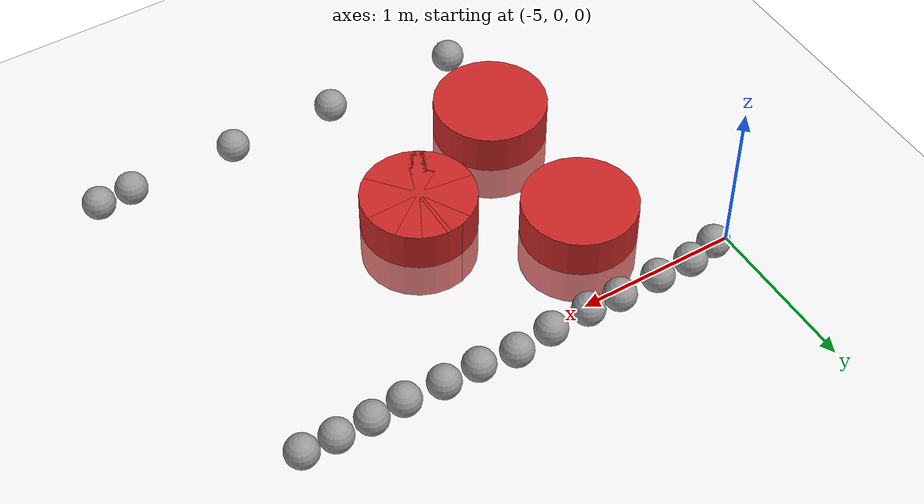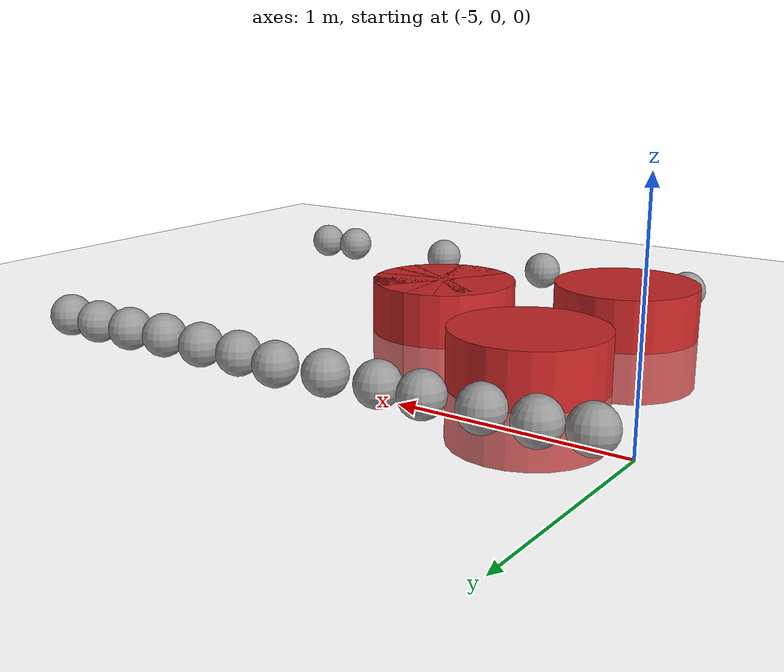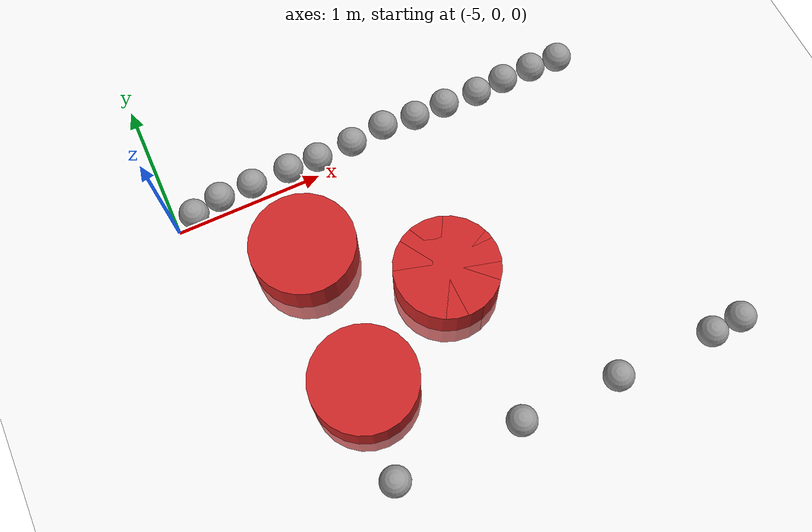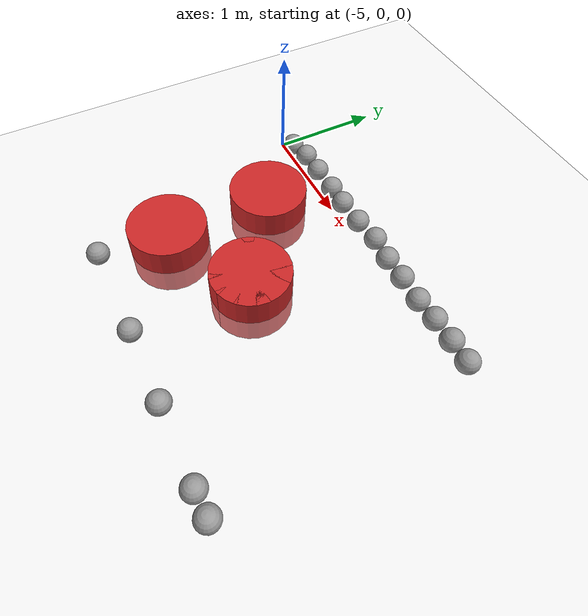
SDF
<sdf version="1.7">
 <world name="default">
  <model name="ground_plane">
   <static>1</static>
   <link name="link">
    <collision name="collision">
     <geometry><plane><normal>0 0 1</normal><size>100 100</size></plane></geometry>
     <surface>
      <contact><collide_bitmask>65535</collide_bitmask></contact>
      <friction><ode><mu>100</mu><mu2>50</mu2></ode></friction>
     </surface>
    </collision>
    <visual name="visual">
     <cast_shadows>0</cast_shadows>
     <geometry><plane><normal>0 0 1</normal><size>100 100</size></plane></geometry>
     <material>
      <script><uri>file://media/materials/scripts/gazebo.material</uri><name>Gazebo/White</name></script>
     </material>
    </visual>
   </link>
  </model>
  <model name="sphere_19">
   <link name="link_0">
    <inertial>
     <mass>1</mass>
     <inertia><ixx>0.1</ixx><ixy>0</ixy><ixz>0</ixz><iyy>0.1</iyy><iyz>0</iyz><izz>0.1</izz></inertia>
    </inertial>
    <visual name="visual">
     <geometry><sphere><radius>0.1</radius></sphere></geometry>
     <material>
      <lighting>1</lighting>
      <script><uri>file://media/materials/scripts/gazebo.material</uri><name>Gazebo/Grey</name></script>
      <shader type="pixel"><normal_map>__default__</normal_map></shader>
      <ambient>0.3 0.3 0.3 1</ambient>
      <diffuse>0.7 0.7 0.7 1</diffuse>
      <specular>0.01 0.01 0.01 1</specular>
      <emissive>0 0 0 1</emissive>
     </material>
    </visual>
    <collision name="collision">
     <geometry><sphere><radius>0.1</radius></sphere></geometry>
     <surface>
      <friction>
       <ode><mu>1</mu><mu2>1</mu2><fdir1>0 0 0</fdir1><slip1>0</slip1><slip2>0</slip2></ode>
       <torsional>
        <coefficient>1</coefficient>
        <patch_radius>0</patch_radius>
        <surface_radius>0</surface_radius>
        <use_patch_radius>1</use_patch_radius>
        <ode><slip>0</slip></ode>
       </torsional>
      </friction>
      <bounce><restitution_coefficient>0</restitution_coefficient><threshold>1e+06</threshold></bounce>
      <contact>
       <collide_without_contact>0</collide_without_contact>
       <collide_without_contact_bitmask>1</collide_without_contact_bitmask>
       <collide_bitmask>1</collide_bitmask>
       <ode>
        <soft_cfm>0</soft_cfm>
        <soft_erp>0.2</soft_erp>
        <kp>1e+13</kp>
        <kd>1</kd>
        <max_vel>0.01</max_vel>
        <min_depth>0</min_depth>
       </ode>
       <bullet>
        <split_impulse>1</split_impulse>
        <split_impulse_penetration_threshold>-0.01</split_impulse_penetration_threshold>
        <soft_cfm>0</soft_cfm>
        <soft_erp>0.2</soft_erp>
        <kp>1e+13</kp>
        <kd>1</kd>
       </bullet>
      </contact>
     </surface>
    </collision>
   </link>
   <static>0</static>
   <pose>-1.96496 -2.08872 0.1 0 -0 0</pose>
  </model>
  <model name="sphere_20">
   <link name="link_0">
    <inertial>
     <mass>1</mass>
     <inertia><ixx>0.1</ixx><ixy>0</ixy><ixz>0</ixz><iyy>0.1</iyy><iyz>0</iyz><izz>0.1</izz></inertia>
    </inertial>
    <visual name="visual">
     <geometry><sphere><radius>0.1</radius></sphere></geometry>
     <material>
      <lighting>1</lighting>
      <script><uri>file://media/materials/scripts/gazebo.material</uri><name>Gazebo/Grey</name></script>
      <shader type="pixel"><normal_map>__default__</normal_map></shader>
      <ambient>0.3 0.3 0.3 1</ambient>
      <diffuse>0.7 0.7 0.7 1</diffuse>
      <specular>0.01 0.01 0.01 1</specular>
      <emissive>0 0 0 1</emissive>
     </material>
    </visual>
    <collision name="collision">
     <geometry><sphere><radius>0.1</radius></sphere></geometry>
     <surface>
      <friction>
       <ode><mu>1</mu><mu2>1</mu2><fdir1>0 0 0</fdir1><slip1>0</slip1><slip2>0</slip2></ode>
       <torsional>
        <coefficient>1</coefficient>
        <patch_radius>0</patch_radius>
        <surface_radius>0</surface_radius>
        <use_patch_radius>1</use_patch_radius>
        <ode><slip>0</slip></ode>
       </torsional>
      </friction>
      <bounce><restitution_coefficient>0</restitution_coefficient><threshold>1e+06</threshold></bounce>
      <contact>
       <collide_without_contact>0</collide_without_contact>
       <collide_without_contact_bitmask>1</collide_without_contact_bitmask>
       <collide_bitmask>1</collide_bitmask>
       <ode>
        <soft_cfm>0</soft_cfm>
        <soft_erp>0.2</soft_erp>
        <kp>1e+13</kp>
        <kd>1</kd>
        <max_vel>0.01</max_vel>
        <min_depth>0</min_depth>
       </ode>
       <bullet>
        <split_impulse>1</split_impulse>
        <split_impulse_penetration_threshold>-0.01</split_impulse_penetration_threshold>
        <soft_cfm>0</soft_cfm>
        <soft_erp>0.2</soft_erp>
        <kp>1e+13</kp>
        <kd>1</kd>
       </bullet>
      </contact>
     </surface>
    </collision>
   </link>
   <static>0</static>
   <pose>-2.17811 -2.09842 0.1 0 -0 0</pose>
  </model>
  <model name="sphere_23">
   <link name="link_0">
    <inertial>
     <mass>1</mass>
     <inertia><ixx>0.1</ixx><ixy>0</ixy><ixz>0</ixz><iyy>0.1</iyy><iyz>0</iyz><izz>0.1</izz></inertia>
    </inertial>
    <visual name="visual">
     <geometry><sphere><radius>0.1</radius></sphere></geometry>
     <material>
      <lighting>1</lighting>
      <script><uri>file://media/materials/scripts/gazebo.material</uri><name>Gazebo/Grey</name></script>
      <shader type="pixel"><normal_map>__default__</normal_map></shader>
      <ambient>0.3 0.3 0.3 1</ambient>
      <diffuse>0.7 0.7 0.7 1</diffuse>
      <specular>0.01 0.01 0.01 1</specular>
      <emissive>0 0 0 1</emissive>
     </material>
    </visual>
    <collision name="collision">
     <geometry><sphere><radius>0.1</radius></sphere></geometry>
     <surface>
      <friction>
       <ode><mu>1</mu><mu2>1</mu2><fdir1>0 0 0</fdir1><slip1>0</slip1><slip2>0</slip2></ode>
       <torsional>
        <coefficient>1</coefficient>
        <patch_radius>0</patch_radius>
        <surface_radius>0</surface_radius>
        <use_patch_radius>1</use_patch_radius>
        <ode><slip>0</slip></ode>
       </torsional>
      </friction>
      <bounce><restitution_coefficient>0</restitution_coefficient><threshold>1e+06</threshold></bounce>
      <contact>
       <collide_without_contact>0</collide_without_contact>
       <collide_without_contact_bitmask>1</collide_without_contact_bitmask>
       <collide_bitmask>1</collide_bitmask>
       <ode>
        <soft_cfm>0</soft_cfm>
        <soft_erp>0.2</soft_erp>
        <kp>1e+13</kp>
        <kd>1</kd>
        <max_vel>0.01</max_vel>
        <min_depth>0</min_depth>
       </ode>
       <bullet>
        <split_impulse>1</split_impulse>
        <split_impulse_penetration_threshold>-0.01</split_impulse_penetration_threshold>
        <soft_cfm>0</soft_cfm>
        <soft_erp>0.2</soft_erp>
        <kp>1e+13</kp>
        <kd>1</kd>
       </bullet>
      </contact>
     </surface>
    </collision>
   </link>
   <static>0</static>
   <pose>-2.85361 -2.09939 0.1 0 -0 0</pose>
  </model>
  <model name="sphere_26">
   <link name="link_0">
    <inertial>
     <mass>1</mass>
     <inertia><ixx>0.1</ixx><ixy>0</ixy><ixz>0</ixz><iyy>0.1</iyy><iyz>0</iyz><izz>0.1</izz></inertia>
    </inertial>
    <visual name="visual">
     <geometry><sphere><radius>0.1</radius></sphere></geometry>
     <material>
      <lighting>1</lighting>
      <script><uri>file://media/materials/scripts/gazebo.material</uri><name>Gazebo/Grey</name></script>
      <shader type="pixel"><normal_map>__default__</normal_map></shader>
      <ambient>0.3 0.3 0.3 1</ambient>
      <diffuse>0.7 0.7 0.7 1</diffuse>
      <specular>0.01 0.01 0.01 1</specular>
      <emissive>0 0 0 1</emissive>
     </material>
    </visual>
    <collision name="collision">
     <geometry><sphere><radius>0.1</radius></sphere></geometry>
     <surface>
      <friction>
       <ode><mu>1</mu><mu2>1</mu2><fdir1>0 0 0</fdir1><slip1>0</slip1><slip2>0</slip2></ode>
       <torsional>
        <coefficient>1</coefficient>
        <patch_radius>0</patch_radius>
        <surface_radius>0</surface_radius>
        <use_patch_radius>1</use_patch_radius>
        <ode><slip>0</slip></ode>
       </torsional>
      </friction>
      <bounce><restitution_coefficient>0</restitution_coefficient><threshold>1e+06</threshold></bounce>
      <contact>
       <collide_without_contact>0</collide_without_contact>
       <collide_without_contact_bitmask>1</collide_without_contact_bitmask>
       <collide_bitmask>1</collide_bitmask>
       <ode>
        <soft_cfm>0</soft_cfm>
        <soft_erp>0.2</soft_erp>
        <kp>1e+13</kp>
        <kd>1</kd>
        <max_vel>0.01</max_vel>
        <min_depth>0</min_depth>
       </ode>
       <bullet>
        <split_impulse>1</split_impulse>
        <split_impulse_penetration_threshold>-0.01</split_impulse_penetration_threshold>
        <soft_cfm>0</soft_cfm>
        <soft_erp>0.2</soft_erp>
        <kp>1e+13</kp>
        <kd>1</kd>
       </bullet>
      </contact>
     </surface>
    </collision>
   </link>
   <static>0</static>
   <pose>-3.52507 -2.09686 0.1 -0.002746 0.025029 -0.000888</pose>
  </model>
  <model name="sphere_30">
   <link name="link_0">
    <inertial>
     <mass>1</mass>
     <inertia><ixx>0.1</ixx><ixy>0</ixy><ixz>0</ixz><iyy>0.1</iyy><iyz>0</iyz><izz>0.1</izz></inertia>
    </inertial>
    <visual name="visual">
     <geometry><sphere><radius>0.1</radius></sphere></geometry>
     <material>
      <lighting>1</lighting>
      <script><uri>file://media/materials/scripts/gazebo.material</uri><name>Gazebo/Grey</name></script>
      <shader type="pixel"><normal_map>__default__</normal_map></shader>
      <ambient>0.3 0.3 0.3 1</ambient>
      <diffuse>0.7 0.7 0.7 1</diffuse>
      <specular>0.01 0.01 0.01 1</specular>
      <emissive>0 0 0 1</emissive>
     </material>
    </visual>
    <collision name="collision">
     <geometry><sphere><radius>0.1</radius></sphere></geometry>
     <surface>
      <friction>
       <ode><mu>1</mu><mu2>1</mu2><fdir1>0 0 0</fdir1><slip1>0</slip1><slip2>0</slip2></ode>
       <torsional>
        <coefficient>1</coefficient>
        <patch_radius>0</patch_radius>
        <surface_radius>0</surface_radius>
        <use_patch_radius>1</use_patch_radius>
        <ode><slip>0</slip></ode>
       </torsional>
      </friction>
      <bounce><restitution_coefficient>0</restitution_coefficient><threshold>1e+06</threshold></bounce>
      <contact>
       <collide_without_contact>0</collide_without_contact>
       <collide_without_contact_bitmask>1</collide_without_contact_bitmask>
       <collide_bitmask>1</collide_bitmask>
       <ode>
        <soft_cfm>0</soft_cfm>
        <soft_erp>0.2</soft_erp>
        <kp>1e+13</kp>
        <kd>1</kd>
        <max_vel>0.01</max_vel>
        <min_depth>0</min_depth>
       </ode>
       <bullet>
        <split_impulse>1</split_impulse>
        <split_impulse_penetration_threshold>-0.01</split_impulse_penetration_threshold>
        <soft_cfm>0</soft_cfm>
        <soft_erp>0.2</soft_erp>
        <kp>1e+13</kp>
        <kd>1</kd>
       </bullet>
      </contact>
     </surface>
    </collision>
   </link>
   <static>0</static>
   <pose>-4.37641 -2.1025 0.1 0 -0 0</pose>
  </model>
  <model name="sphere_90">
   <link name="link_0">
    <inertial>
     <mass>1</mass>
     <inertia><ixx>0.1</ixx><ixy>0</ixy><ixz>0</ixz><iyy>0.1</iyy><iyz>0</iyz><izz>0.1</izz></inertia>
    </inertial>
    <visual name="visual">
     <geometry><sphere><radius>0.1</radius></sphere></geometry>
     <material>
      <lighting>1</lighting>
      <script><uri>file://media/materials/scripts/gazebo.material</uri><name>Gazebo/Grey</name></script>
      <shader type="pixel"><normal_map>__default__</normal_map></shader>
      <ambient>0.3 0.3 0.3 1</ambient>
      <diffuse>0.7 0.7 0.7 1</diffuse>
      <specular>0.01 0.01 0.01 1</specular>
      <emissive>0 0 0 1</emissive>
     </material>
    </visual>
    <collision name="collision">
     <geometry><sphere><radius>0.1</radius></sphere></geometry>
     <surface>
      <friction>
       <ode><mu>1</mu><mu2>1</mu2><fdir1>0 0 0</fdir1><slip1>0</slip1><slip2>0</slip2></ode>
       <torsional>
        <coefficient>1</coefficient>
        <patch_radius>0</patch_radius>
        <surface_radius>0</surface_radius>
        <use_patch_radius>1</use_patch_radius>
        <ode><slip>0</slip></ode>
       </torsional>
      </friction>
      <bounce><restitution_coefficient>0</restitution_coefficient><threshold>1e+06</threshold></bounce>
      <contact>
       <collide_without_contact>0</collide_without_contact>
       <collide_without_contact_bitmask>1</collide_without_contact_bitmask>
       <collide_bitmask>1</collide_bitmask>
       <ode>
        <soft_cfm>0</soft_cfm>
        <soft_erp>0.2</soft_erp>
        <kp>1e+13</kp>
        <kd>1</kd>
        <max_vel>0.01</max_vel>
        <min_depth>0</min_depth>
       </ode>
       <bullet>
        <split_impulse>1</split_impulse>
        <split_impulse_penetration_threshold>-0.01</split_impulse_penetration_threshold>
        <soft_cfm>0</soft_cfm>
        <soft_erp>0.2</soft_erp>
        <kp>1e+13</kp>
        <kd>1</kd>
       </bullet>
      </contact>
     </surface>
    </collision>
   </link>
   <static>0</static>
   <pose>-2.13055 0.103156 0.1 0.001826 0.059351 0.000319</pose>
  </model>
  <model name="sphere_91">
   <link name="link_0">
    <inertial>
     <mass>1</mass>
     <inertia><ixx>0.1</ixx><ixy>0</ixy><ixz>0</ixz><iyy>0.1</iyy><iyz>0</iyz><izz>0.1</izz></inertia>
    </inertial>
    <visual name="visual">
     <geometry><sphere><radius>0.1</radius></sphere></geometry>
     <material>
      <lighting>1</lighting>
      <script><uri>file://media/materials/scripts/gazebo.material</uri><name>Gazebo/Grey</name></script>
      <shader type="pixel"><normal_map>__default__</normal_map></shader>
      <ambient>0.3 0.3 0.3 1</ambient>
      <diffuse>0.7 0.7 0.7 1</diffuse>
      <specular>0.01 0.01 0.01 1</specular>
      <emissive>0 0 0 1</emissive>
     </material>
    </visual>
    <collision name="collision">
     <geometry><sphere><radius>0.1</radius></sphere></geometry>
     <surface>
      <friction>
       <ode><mu>1</mu><mu2>1</mu2><fdir1>0 0 0</fdir1><slip1>0</slip1><slip2>0</slip2></ode>
       <torsional>
        <coefficient>1</coefficient>
        <patch_radius>0</patch_radius>
        <surface_radius>0</surface_radius>
        <use_patch_radius>1</use_patch_radius>
        <ode><slip>0</slip></ode>
       </torsional>
      </friction>
      <bounce><restitution_coefficient>0</restitution_coefficient><threshold>1e+06</threshold></bounce>
      <contact>
       <collide_without_contact>0</collide_without_contact>
       <collide_without_contact_bitmask>1</collide_without_contact_bitmask>
       <collide_bitmask>1</collide_bitmask>
       <ode>
        <soft_cfm>0</soft_cfm>
        <soft_erp>0.2</soft_erp>
        <kp>1e+13</kp>
        <kd>1</kd>
        <max_vel>0.01</max_vel>
        <min_depth>0</min_depth>
       </ode>
       <bullet>
        <split_impulse>1</split_impulse>
        <split_impulse_penetration_threshold>-0.01</split_impulse_penetration_threshold>
        <soft_cfm>0</soft_cfm>
        <soft_erp>0.2</soft_erp>
        <kp>1e+13</kp>
        <kd>1</kd>
       </bullet>
      </contact>
     </surface>
    </collision>
   </link>
   <static>0</static>
   <pose>-2.33554 0.108563 0.1 -0.001915 -0.063892 0.000326</pose>
  </model>
  <model name="sphere_92">
   <link name="link_0">
    <inertial>
     <mass>1</mass>
     <inertia><ixx>0.1</ixx><ixy>0</ixy><ixz>0</ixz><iyy>0.1</iyy><iyz>0</iyz><izz>0.1</izz></inertia>
    </inertial>
    <visual name="visual">
     <geometry><sphere><radius>0.1</radius></sphere></geometry>
     <material>
      <lighting>1</lighting>
      <script><uri>file://media/materials/scripts/gazebo.material</uri><name>Gazebo/Grey</name></script>
      <shader type="pixel"><normal_map>__default__</normal_map></shader>
      <ambient>0.3 0.3 0.3 1</ambient>
      <diffuse>0.7 0.7 0.7 1</diffuse>
      <specular>0.01 0.01 0.01 1</specular>
      <emissive>0 0 0 1</emissive>
     </material>
    </visual>
    <collision name="collision">
     <geometry><sphere><radius>0.1</radius></sphere></geometry>
     <surface>
      <friction>
       <ode><mu>1</mu><mu2>1</mu2><fdir1>0 0 0</fdir1><slip1>0</slip1><slip2>0</slip2></ode>
       <torsional>
        <coefficient>1</coefficient>
        <patch_radius>0</patch_radius>
        <surface_radius>0</surface_radius>
        <use_patch_radius>1</use_patch_radius>
        <ode><slip>0</slip></ode>
       </torsional>
      </friction>
      <bounce><restitution_coefficient>0</restitution_coefficient><threshold>1e+06</threshold></bounce>
      <contact>
       <collide_without_contact>0</collide_without_contact>
       <collide_without_contact_bitmask>1</collide_without_contact_bitmask>
       <collide_bitmask>1</collide_bitmask>
       <ode>
        <soft_cfm>0</soft_cfm>
        <soft_erp>0.2</soft_erp>
        <kp>1e+13</kp>
        <kd>1</kd>
        <max_vel>0.01</max_vel>
        <min_depth>0</min_depth>
       </ode>
       <bullet>
        <split_impulse>1</split_impulse>
        <split_impulse_penetration_threshold>-0.01</split_impulse_penetration_threshold>
        <soft_cfm>0</soft_cfm>
        <soft_erp>0.2</soft_erp>
        <kp>1e+13</kp>
        <kd>1</kd>
       </bullet>
      </contact>
     </surface>
    </collision>
   </link>
   <static>0</static>
   <pose>-2.55218 0.106482 0.1 0 -0 0</pose>
  </model>
  <model name="sphere_93">
   <link name="link_0">
    <inertial>
     <mass>1</mass>
     <inertia><ixx>0.1</ixx><ixy>0</ixy><ixz>0</ixz><iyy>0.1</iyy><iyz>0</iyz><izz>0.1</izz></inertia>
    </inertial>
    <visual name="visual">
     <geometry><sphere><radius>0.1</radius></sphere></geometry>
     <material>
      <lighting>1</lighting>
      <script><uri>file://media/materials/scripts/gazebo.material</uri><name>Gazebo/Grey</name></script>
      <shader type="pixel"><normal_map>__default__</normal_map></shader>
      <ambient>0.3 0.3 0.3 1</ambient>
      <diffuse>0.7 0.7 0.7 1</diffuse>
      <specular>0.01 0.01 0.01 1</specular>
      <emissive>0 0 0 1</emissive>
     </material>
    </visual>
    <collision name="collision">
     <geometry><sphere><radius>0.1</radius></sphere></geometry>
     <surface>
      <friction>
       <ode><mu>1</mu><mu2>1</mu2><fdir1>0 0 0</fdir1><slip1>0</slip1><slip2>0</slip2></ode>
       <torsional>
        <coefficient>1</coefficient>
        <patch_radius>0</patch_radius>
        <surface_radius>0</surface_radius>
        <use_patch_radius>1</use_patch_radius>
        <ode><slip>0</slip></ode>
       </torsional>
      </friction>
      <bounce><restitution_coefficient>0</restitution_coefficient><threshold>1e+06</threshold></bounce>
      <contact>
       <collide_without_contact>0</collide_without_contact>
       <collide_without_contact_bitmask>1</collide_without_contact_bitmask>
       <collide_bitmask>1</collide_bitmask>
       <ode>
        <soft_cfm>0</soft_cfm>
        <soft_erp>0.2</soft_erp>
        <kp>1e+13</kp>
        <kd>1</kd>
        <max_vel>0.01</max_vel>
        <min_depth>0</min_depth>
       </ode>
       <bullet>
        <split_impulse>1</split_impulse>
        <split_impulse_penetration_threshold>-0.01</split_impulse_penetration_threshold>
        <soft_cfm>0</soft_cfm>
        <soft_erp>0.2</soft_erp>
        <kp>1e+13</kp>
        <kd>1</kd>
       </bullet>
      </contact>
     </surface>
    </collision>
   </link>
   <static>0</static>
   <pose>-2.76279 0.091574 0.1 0 -0 0</pose>
  </model>
  <model name="sphere_94">
   <link name="link_0">
    <inertial>
     <mass>1</mass>
     <inertia><ixx>0.1</ixx><ixy>0</ixy><ixz>0</ixz><iyy>0.1</iyy><iyz>0</iyz><izz>0.1</izz></inertia>
    </inertial>
    <visual name="visual">
     <geometry><sphere><radius>0.1</radius></sphere></geometry>
     <material>
      <lighting>1</lighting>
      <script><uri>file://media/materials/scripts/gazebo.material</uri><name>Gazebo/Grey</name></script>
      <shader type="pixel"><normal_map>__default__</normal_map></shader>
      <ambient>0.3 0.3 0.3 1</ambient>
      <diffuse>0.7 0.7 0.7 1</diffuse>
      <specular>0.01 0.01 0.01 1</specular>
      <emissive>0 0 0 1</emissive>
     </material>
    </visual>
    <collision name="collision">
     <geometry><sphere><radius>0.1</radius></sphere></geometry>
     <surface>
      <friction>
       <ode><mu>1</mu><mu2>1</mu2><fdir1>0 0 0</fdir1><slip1>0</slip1><slip2>0</slip2></ode>
       <torsional>
        <coefficient>1</coefficient>
        <patch_radius>0</patch_radius>
        <surface_radius>0</surface_radius>
        <use_patch_radius>1</use_patch_radius>
        <ode><slip>0</slip></ode>
       </torsional>
      </friction>
      <bounce><restitution_coefficient>0</restitution_coefficient><threshold>1e+06</threshold></bounce>
      <contact>
       <collide_without_contact>0</collide_without_contact>
       <collide_without_contact_bitmask>1</collide_without_contact_bitmask>
       <collide_bitmask>1</collide_bitmask>
       <ode>
        <soft_cfm>0</soft_cfm>
        <soft_erp>0.2</soft_erp>
        <kp>1e+13</kp>
        <kd>1</kd>
        <max_vel>0.01</max_vel>
        <min_depth>0</min_depth>
       </ode>
       <bullet>
        <split_impulse>1</split_impulse>
        <split_impulse_penetration_threshold>-0.01</split_impulse_penetration_threshold>
        <soft_cfm>0</soft_cfm>
        <soft_erp>0.2</soft_erp>
        <kp>1e+13</kp>
        <kd>1</kd>
       </bullet>
      </contact>
     </surface>
    </collision>
   </link>
   <static>0</static>
   <pose>-3.00652 0.102714 0.1 0 -0 0</pose>
  </model>
  <model name="sphere_95">
   <link name="link_0">
    <inertial>
     <mass>1</mass>
     <inertia><ixx>0.1</ixx><ixy>0</ixy><ixz>0</ixz><iyy>0.1</iyy><iyz>0</iyz><izz>0.1</izz></inertia>
    </inertial>
    <visual name="visual">
     <geometry><sphere><radius>0.1</radius></sphere></geometry>
     <material>
      <lighting>1</lighting>
      <script><uri>file://media/materials/scripts/gazebo.material</uri><name>Gazebo/Grey</name></script>
      <shader type="pixel"><normal_map>__default__</normal_map></shader>
      <ambient>0.3 0.3 0.3 1</ambient>
      <diffuse>0.7 0.7 0.7 1</diffuse>
      <specular>0.01 0.01 0.01 1</specular>
      <emissive>0 0 0 1</emissive>
     </material>
    </visual>
    <collision name="collision">
     <geometry><sphere><radius>0.1</radius></sphere></geometry>
     <surface>
      <friction>
       <ode><mu>1</mu><mu2>1</mu2><fdir1>0 0 0</fdir1><slip1>0</slip1><slip2>0</slip2></ode>
       <torsional>
        <coefficient>1</coefficient>
        <patch_radius>0</patch_radius>
        <surface_radius>0</surface_radius>
        <use_patch_radius>1</use_patch_radius>
        <ode><slip>0</slip></ode>
       </torsional>
      </friction>
      <bounce><restitution_coefficient>0</restitution_coefficient><threshold>1e+06</threshold></bounce>
      <contact>
       <collide_without_contact>0</collide_without_contact>
       <collide_without_contact_bitmask>1</collide_without_contact_bitmask>
       <collide_bitmask>1</collide_bitmask>
       <ode>
        <soft_cfm>0</soft_cfm>
        <soft_erp>0.2</soft_erp>
        <kp>1e+13</kp>
        <kd>1</kd>
        <max_vel>0.01</max_vel>
        <min_depth>0</min_depth>
       </ode>
       <bullet>
        <split_impulse>1</split_impulse>
        <split_impulse_penetration_threshold>-0.01</split_impulse_penetration_threshold>
        <soft_cfm>0</soft_cfm>
        <soft_erp>0.2</soft_erp>
        <kp>1e+13</kp>
        <kd>1</kd>
       </bullet>
      </contact>
     </surface>
    </collision>
   </link>
   <static>0</static>
   <pose>-3.23039 0.100863 0.1 0 -0 0</pose>
  </model>
  <model name="sphere_96">
   <link name="link_0">
    <inertial>
     <mass>1</mass>
     <inertia><ixx>0.1</ixx><ixy>0</ixy><ixz>0</ixz><iyy>0.1</iyy><iyz>0</iyz><izz>0.1</izz></inertia>
    </inertial>
    <visual name="visual">
     <geometry><sphere><radius>0.1</radius></sphere></geometry>
     <material>
      <lighting>1</lighting>
      <script><uri>file://media/materials/scripts/gazebo.material</uri><name>Gazebo/Grey</name></script>
      <shader type="pixel"><normal_map>__default__</normal_map></shader>
      <ambient>0.3 0.3 0.3 1</ambient>
      <diffuse>0.7 0.7 0.7 1</diffuse>
      <specular>0.01 0.01 0.01 1</specular>
      <emissive>0 0 0 1</emissive>
     </material>
    </visual>
    <collision name="collision">
     <geometry><sphere><radius>0.1</radius></sphere></geometry>
     <surface>
      <friction>
       <ode><mu>1</mu><mu2>1</mu2><fdir1>0 0 0</fdir1><slip1>0</slip1><slip2>0</slip2></ode>
       <torsional>
        <coefficient>1</coefficient>
        <patch_radius>0</patch_radius>
        <surface_radius>0</surface_radius>
        <use_patch_radius>1</use_patch_radius>
        <ode><slip>0</slip></ode>
       </torsional>
      </friction>
      <bounce><restitution_coefficient>0</restitution_coefficient><threshold>1e+06</threshold></bounce>
      <contact>
       <collide_without_contact>0</collide_without_contact>
       <collide_without_contact_bitmask>1</collide_without_contact_bitmask>
       <collide_bitmask>1</collide_bitmask>
       <ode>
        <soft_cfm>0</soft_cfm>
        <soft_erp>0.2</soft_erp>
        <kp>1e+13</kp>
        <kd>1</kd>
        <max_vel>0.01</max_vel>
        <min_depth>0</min_depth>
       </ode>
       <bullet>
        <split_impulse>1</split_impulse>
        <split_impulse_penetration_threshold>-0.01</split_impulse_penetration_threshold>
        <soft_cfm>0</soft_cfm>
        <soft_erp>0.2</soft_erp>
        <kp>1e+13</kp>
        <kd>1</kd>
       </bullet>
      </contact>
     </surface>
    </collision>
   </link>
   <static>0</static>
   <pose>-3.46106 0.125286 0.1 0 -0 0</pose>
  </model>
  <model name="sphere_97">
   <link name="link_0">
    <inertial>
     <mass>1</mass>
     <inertia><ixx>0.1</ixx><ixy>0</ixy><ixz>0</ixz><iyy>0.1</iyy><iyz>0</iyz><izz>0.1</izz></inertia>
    </inertial>
    <visual name="visual">
     <geometry><sphere><radius>0.1</radius></sphere></geometry>
     <material>
      <lighting>1</lighting>
      <script><uri>file://media/materials/scripts/gazebo.material</uri><name>Gazebo/Grey</name></script>
      <shader type="pixel"><normal_map>__default__</normal_map></shader>
      <ambient>0.3 0.3 0.3 1</ambient>
      <diffuse>0.7 0.7 0.7 1</diffuse>
      <specular>0.01 0.01 0.01 1</specular>
      <emissive>0 0 0 1</emissive>
     </material>
    </visual>
    <collision name="collision">
     <geometry><sphere><radius>0.1</radius></sphere></geometry>
     <surface>
      <friction>
       <ode><mu>1</mu><mu2>1</mu2><fdir1>0 0 0</fdir1><slip1>0</slip1><slip2>0</slip2></ode>
       <torsional>
        <coefficient>1</coefficient>
        <patch_radius>0</patch_radius>
        <surface_radius>0</surface_radius>
        <use_patch_radius>1</use_patch_radius>
        <ode><slip>0</slip></ode>
       </torsional>
      </friction>
      <bounce><restitution_coefficient>0</restitution_coefficient><threshold>1e+06</threshold></bounce>
      <contact>
       <collide_without_contact>0</collide_without_contact>
       <collide_without_contact_bitmask>1</collide_without_contact_bitmask>
       <collide_bitmask>1</collide_bitmask>
       <ode>
        <soft_cfm>0</soft_cfm>
        <soft_erp>0.2</soft_erp>
        <kp>1e+13</kp>
        <kd>1</kd>
        <max_vel>0.01</max_vel>
        <min_depth>0</min_depth>
       </ode>
       <bullet>
        <split_impulse>1</split_impulse>
        <split_impulse_penetration_threshold>-0.01</split_impulse_penetration_threshold>
        <soft_cfm>0</soft_cfm>
        <soft_erp>0.2</soft_erp>
        <kp>1e+13</kp>
        <kd>1</kd>
       </bullet>
      </contact>
     </surface>
    </collision>
   </link>
   <static>0</static>
   <pose>-3.70449 0.096931 0.1 0 -0 0</pose>
  </model>
  <model name="sphere_98">
   <link name="link_0">
    <inertial>
     <mass>1</mass>
     <inertia><ixx>0.1</ixx><ixy>0</ixy><ixz>0</ixz><iyy>0.1</iyy><iyz>0</iyz><izz>0.1</izz></inertia>
    </inertial>
    <visual name="visual">
     <geometry><sphere><radius>0.1</radius></sphere></geometry>
     <material>
      <lighting>1</lighting>
      <script><uri>file://media/materials/scripts/gazebo.material</uri><name>Gazebo/Grey</name></script>
      <shader type="pixel"><normal_map>__default__</normal_map></shader>
      <ambient>0.3 0.3 0.3 1</ambient>
      <diffuse>0.7 0.7 0.7 1</diffuse>
      <specular>0.01 0.01 0.01 1</specular>
      <emissive>0 0 0 1</emissive>
     </material>
    </visual>
    <collision name="collision">
     <geometry><sphere><radius>0.1</radius></sphere></geometry>
     <surface>
      <friction>
       <ode><mu>1</mu><mu2>1</mu2><fdir1>0 0 0</fdir1><slip1>0</slip1><slip2>0</slip2></ode>
       <torsional>
        <coefficient>1</coefficient>
        <patch_radius>0</patch_radius>
        <surface_radius>0</surface_radius>
        <use_patch_radius>1</use_patch_radius>
        <ode><slip>0</slip></ode>
       </torsional>
      </friction>
      <bounce><restitution_coefficient>0</restitution_coefficient><threshold>1e+06</threshold></bounce>
      <contact>
       <collide_without_contact>0</collide_without_contact>
       <collide_without_contact_bitmask>1</collide_without_contact_bitmask>
       <collide_bitmask>1</collide_bitmask>
       <ode>
        <soft_cfm>0</soft_cfm>
        <soft_erp>0.2</soft_erp>
        <kp>1e+13</kp>
        <kd>1</kd>
        <max_vel>0.01</max_vel>
        <min_depth>0</min_depth>
       </ode>
       <bullet>
        <split_impulse>1</split_impulse>
        <split_impulse_penetration_threshold>-0.01</split_impulse_penetration_threshold>
        <soft_cfm>0</soft_cfm>
        <soft_erp>0.2</soft_erp>
        <kp>1e+13</kp>
        <kd>1</kd>
       </bullet>
      </contact>
     </surface>
    </collision>
   </link>
   <static>0</static>
   <pose>-3.96126 0.088226 0.1 0 -0 0</pose>
  </model>
  <model name="sphere_99">
   <link name="link_0">
    <inertial>
     <mass>1</mass>
     <inertia><ixx>0.1</ixx><ixy>0</ixy><ixz>0</ixz><iyy>0.1</iyy><iyz>0</iyz><izz>0.1</izz></inertia>
    </inertial>
    <visual name="visual">
     <geometry><sphere><radius>0.1</radius></sphere></geometry>
     <material>
      <lighting>1</lighting>
      <script><uri>file://media/materials/scripts/gazebo.material</uri><name>Gazebo/Grey</name></script>
      <shader type="pixel"><normal_map>__default__</normal_map></shader>
      <ambient>0.3 0.3 0.3 1</ambient>
      <diffuse>0.7 0.7 0.7 1</diffuse>
      <specular>0.01 0.01 0.01 1</specular>
      <emissive>0 0 0 1</emissive>
     </material>
    </visual>
    <collision name="collision">
     <geometry><sphere><radius>0.1</radius></sphere></geometry>
     <surface>
      <friction>
       <ode><mu>1</mu><mu2>1</mu2><fdir1>0 0 0</fdir1><slip1>0</slip1><slip2>0</slip2></ode>
       <torsional>
        <coefficient>1</coefficient>
        <patch_radius>0</patch_radius>
        <surface_radius>0</surface_radius>
        <use_patch_radius>1</use_patch_radius>
        <ode><slip>0</slip></ode>
       </torsional>
      </friction>
      <bounce><restitution_coefficient>0</restitution_coefficient><threshold>1e+06</threshold></bounce>
      <contact>
       <collide_without_contact>0</collide_without_contact>
       <collide_without_contact_bitmask>1</collide_without_contact_bitmask>
       <collide_bitmask>1</collide_bitmask>
       <ode>
        <soft_cfm>0</soft_cfm>
        <soft_erp>0.2</soft_erp>
        <kp>1e+13</kp>
        <kd>1</kd>
        <max_vel>0.01</max_vel>
        <min_depth>0</min_depth>
       </ode>
       <bullet>
        <split_impulse>1</split_impulse>
        <split_impulse_penetration_threshold>-0.01</split_impulse_penetration_threshold>
        <soft_cfm>0</soft_cfm>
        <soft_erp>0.2</soft_erp>
        <kp>1e+13</kp>
        <kd>1</kd>
       </bullet>
      </contact>
     </surface>
    </collision>
   </link>
   <static>0</static>
   <pose>-4.17198 0.093062 0.1 0 -0 0</pose>
  </model>
  <model name="sphere_100">
   <link name="link_0">
    <inertial>
     <mass>1</mass>
     <inertia><ixx>0.1</ixx><ixy>0</ixy><ixz>0</ixz><iyy>0.1</iyy><iyz>0</iyz><izz>0.1</izz></inertia>
    </inertial>
    <visual name="visual">
     <geometry><sphere><radius>0.1</radius></sphere></geometry>
     <material>
      <lighting>1</lighting>
      <script><uri>file://media/materials/scripts/gazebo.material</uri><name>Gazebo/Grey</name></script>
      <shader type="pixel"><normal_map>__default__</normal_map></shader>
      <ambient>0.3 0.3 0.3 1</ambient>
      <diffuse>0.7 0.7 0.7 1</diffuse>
      <specular>0.01 0.01 0.01 1</specular>
      <emissive>0 0 0 1</emissive>
     </material>
    </visual>
    <collision name="collision">
     <geometry><sphere><radius>0.1</radius></sphere></geometry>
     <surface>
      <friction>
       <ode><mu>1</mu><mu2>1</mu2><fdir1>0 0 0</fdir1><slip1>0</slip1><slip2>0</slip2></ode>
       <torsional>
        <coefficient>1</coefficient>
        <patch_radius>0</patch_radius>
        <surface_radius>0</surface_radius>
        <use_patch_radius>1</use_patch_radius>
        <ode><slip>0</slip></ode>
       </torsional>
      </friction>
      <bounce><restitution_coefficient>0</restitution_coefficient><threshold>1e+06</threshold></bounce>
      <contact>
       <collide_without_contact>0</collide_without_contact>
       <collide_without_contact_bitmask>1</collide_without_contact_bitmask>
       <collide_bitmask>1</collide_bitmask>
       <ode>
        <soft_cfm>0</soft_cfm>
        <soft_erp>0.2</soft_erp>
        <kp>1e+13</kp>
        <kd>1</kd>
        <max_vel>0.01</max_vel>
        <min_depth>0</min_depth>
       </ode>
       <bullet>
        <split_impulse>1</split_impulse>
        <split_impulse_penetration_threshold>-0.01</split_impulse_penetration_threshold>
        <soft_cfm>0</soft_cfm>
        <soft_erp>0.2</soft_erp>
        <kp>1e+13</kp>
        <kd>1</kd>
       </bullet>
      </contact>
     </surface>
    </collision>
   </link>
   <static>0</static>
   <pose>-4.43538 0.090878 0.1 0 -0 0</pose>
  </model>
  <model name="sphere_101">
   <link name="link_0">
    <inertial>
     <mass>1</mass>
     <inertia><ixx>0.1</ixx><ixy>0</ixy><ixz>0</ixz><iyy>0.1</iyy><iyz>0</iyz><izz>0.1</izz></inertia>
    </inertial>
    <visual name="visual">
     <geometry><sphere><radius>0.1</radius></sphere></geometry>
     <material>
      <lighting>1</lighting>
      <script><uri>file://media/materials/scripts/gazebo.material</uri><name>Gazebo/Grey</name></script>
      <shader type="pixel"><normal_map>__default__</normal_map></shader>
      <ambient>0.3 0.3 0.3 1</ambient>
      <diffuse>0.7 0.7 0.7 1</diffuse>
      <specular>0.01 0.01 0.01 1</specular>
      <emissive>0 0 0 1</emissive>
     </material>
    </visual>
    <collision name="collision">
     <geometry><sphere><radius>0.1</radius></sphere></geometry>
     <surface>
      <friction>
       <ode><mu>1</mu><mu2>1</mu2><fdir1>0 0 0</fdir1><slip1>0</slip1><slip2>0</slip2></ode>
       <torsional>
        <coefficient>1</coefficient>
        <patch_radius>0</patch_radius>
        <surface_radius>0</surface_radius>
        <use_patch_radius>1</use_patch_radius>
        <ode><slip>0</slip></ode>
       </torsional>
      </friction>
      <bounce><restitution_coefficient>0</restitution_coefficient><threshold>1e+06</threshold></bounce>
      <contact>
       <collide_without_contact>0</collide_without_contact>
       <collide_without_contact_bitmask>1</collide_without_contact_bitmask>
       <collide_bitmask>1</collide_bitmask>
       <ode>
        <soft_cfm>0</soft_cfm>
        <soft_erp>0.2</soft_erp>
        <kp>1e+13</kp>
        <kd>1</kd>
        <max_vel>0.01</max_vel>
        <min_depth>0</min_depth>
       </ode>
       <bullet>
        <split_impulse>1</split_impulse>
        <split_impulse_penetration_threshold>-0.01</split_impulse_penetration_threshold>
        <soft_cfm>0</soft_cfm>
        <soft_erp>0.2</soft_erp>
        <kp>1e+13</kp>
        <kd>1</kd>
       </bullet>
      </contact>
     </surface>
    </collision>
   </link>
   <static>0</static>
   <pose>-4.66588 0.090198 0.1 -0.00173 0.017044 0.001894</pose>
  </model>
  <model name="sphere_112">
   <link name="link_0">
    <inertial>
     <mass>1</mass>
     <inertia><ixx>0.1</ixx><ixy>0</ixy><ixz>0</ixz><iyy>0.1</iyy><iyz>0</iyz><izz>0.1</izz></inertia>
    </inertial>
    <visual name="visual">
     <geometry><sphere><radius>0.1</radius></sphere></geometry>
     <material>
      <lighting>1</lighting>
      <script><uri>file://media/materials/scripts/gazebo.material</uri><name>Gazebo/Grey</name></script>
      <shader type="pixel"><normal_map>__default__</normal_map></shader>
      <ambient>0.3 0.3 0.3 1</ambient>
      <diffuse>0.7 0.7 0.7 1</diffuse>
      <specular>0.01 0.01 0.01 1</specular>
      <emissive>0 0 0 1</emissive>
     </material>
    </visual>
    <collision name="collision">
     <geometry><sphere><radius>0.1</radius></sphere></geometry>
     <surface>
      <friction>
       <ode><mu>1</mu><mu2>1</mu2><fdir1>0 0 0</fdir1><slip1>0</slip1><slip2>0</slip2></ode>
       <torsional>
        <coefficient>1</coefficient>
        <patch_radius>0</patch_radius>
        <surface_radius>0</surface_radius>
        <use_patch_radius>1</use_patch_radius>
        <ode><slip>0</slip></ode>
       </torsional>
      </friction>
      <bounce><restitution_coefficient>0</restitution_coefficient><threshold>1e+06</threshold></bounce>
      <contact>
       <collide_without_contact>0</collide_without_contact>
       <collide_without_contact_bitmask>1</collide_without_contact_bitmask>
       <collide_bitmask>1</collide_bitmask>
       <ode>
        <soft_cfm>0</soft_cfm>
        <soft_erp>0.2</soft_erp>
        <kp>1e+13</kp>
        <kd>1</kd>
        <max_vel>0.01</max_vel>
        <min_depth>0</min_depth>
       </ode>
       <bullet>
        <split_impulse>1</split_impulse>
        <split_impulse_penetration_threshold>-0.01</split_impulse_penetration_threshold>
        <soft_cfm>0</soft_cfm>
        <soft_erp>0.2</soft_erp>
        <kp>1e+13</kp>
        <kd>1</kd>
       </bullet>
      </contact>
     </surface>
    </collision>
   </link>
   <static>0</static>
   <pose>-4.8624 0.045907 0.1 0.116236 0.043586 -0.004795</pose>
  </model>
  <model name="model8.2_0">
   <model name="model8.1_3">
    <link name="link_1">
     <inertial>
      <mass>1</mass>
      <inertia><ixx>0.145833</ixx><ixy>0</ixy><ixz>0</ixz><iyy>0.145833</iyy><iyz>0</iyz><izz>0.125</izz></inertia>
     </inertial>
     <visual name="visual">
      <geometry><cylinder><radius>0.35</radius><length>0.5</length></cylinder></geometry>
      <material>
       <lighting>1</lighting>
       <script><uri>file://media/materials/scripts/gazebo.material</uri><name>Gazebo/Red</name></script>
       <shader type="pixel"><normal_map>__default__</normal_map></shader>
       <ambient>0 1 0 1</ambient>
       <diffuse>0.7 0.7 0.7 1</diffuse>
       <specular>0.01 0.01 0.01 1</specular>
       <emissive>0 0 0 1</emissive>
      </material>
     </visual>
     <collision name="collision">
      <geometry><cylinder><radius>0.35</radius><length>0.5</length></cylinder></geometry>
      <surface>
       <friction>
        <ode><mu>1</mu><mu2>1</mu2><fdir1>0 0 0</fdir1><slip1>0</slip1><slip2>0</slip2></ode>
        <torsional>
         <coefficient>1</coefficient>
         <patch_radius>0</patch_radius>
         <surface_radius>0</surface_radius>
         <use_patch_radius>1</use_patch_radius>
         <ode><slip>0</slip></ode>
        </torsional>
       </friction>
       <bounce><restitution_coefficient>0</restitution_coefficient><threshold>1e+06</threshold></bounce>
       <contact>
        <collide_without_contact>0</collide_without_contact>
        <collide_without_contact_bitmask>1</collide_without_contact_bitmask>
        <collide_bitmask>1</collide_bitmask>
        <ode>
         <soft_cfm>0</soft_cfm>
         <soft_erp>0.2</soft_erp>
         <kp>1e+13</kp>
         <kd>1</kd>
         <max_vel>0.01</max_vel>
         <min_depth>0</min_depth>
        </ode>
        <bullet>
         <split_impulse>1</split_impulse>
         <split_impulse_penetration_threshold>-0.01</split_impulse_penetration_threshold>
         <soft_cfm>0</soft_cfm>
         <soft_erp>0.2</soft_erp>
         <kp>1e+13</kp>
         <kd>1</kd>
        </bullet>
       </contact>
      </surface>
     </collision>
    </link>
    <static>0</static>
    <pose>-4e-06 4e-06 0 0 -0 0</pose>
   </model>
   <static>0</static>
   <pose>-4.30421 -1.48613 0 0 -0 0</pose>
  </model>
  <model name="model8.2_1">
   <model name="model8.1_3">
    <link name="link_1">
     <inertial>
      <mass>1</mass>
      <inertia><ixx>0.145833</ixx><ixy>0</ixy><ixz>0</ixz><iyy>0.145833</iyy><iyz>0</iyz><izz>0.125</izz></inertia>
     </inertial>
     <visual name="visual">
      <geometry><cylinder><radius>0.35</radius><length>0.5</length></cylinder></geometry>
      <material>
       <lighting>1</lighting>
       <script><uri>file://media/materials/scripts/gazebo.material</uri><name>Gazebo/Red</name></script>
       <shader type="pixel"><normal_map>__default__</normal_map></shader>
       <ambient>0 1 0 1</ambient>
       <diffuse>0.7 0.7 0.7 1</diffuse>
       <specular>0.01 0.01 0.01 1</specular>
       <emissive>0 0 0 1</emissive>
      </material>
     </visual>
     <collision name="collision">
      <geometry><cylinder><radius>0.35</radius><length>0.5</length></cylinder></geometry>
      <surface>
       <friction>
        <ode><mu>1</mu><mu2>1</mu2><fdir1>0 0 0</fdir1><slip1>0</slip1><slip2>0</slip2></ode>
        <torsional>
         <coefficient>1</coefficient>
         <patch_radius>0</patch_radius>
         <surface_radius>0</surface_radius>
         <use_patch_radius>1</use_patch_radius>
         <ode><slip>0</slip></ode>
        </torsional>
       </friction>
       <bounce><restitution_coefficient>0</restitution_coefficient><threshold>1e+06</threshold></bounce>
       <contact>
        <collide_without_contact>0</collide_without_contact>
        <collide_without_contact_bitmask>1</collide_without_contact_bitmask>
        <collide_bitmask>1</collide_bitmask>
        <ode>
         <soft_cfm>0</soft_cfm>
         <soft_erp>0.2</soft_erp>
         <kp>1e+13</kp>
         <kd>1</kd>
         <max_vel>0.01</max_vel>
         <min_depth>0</min_depth>
        </ode>
        <bullet>
         <split_impulse>1</split_impulse>
         <split_impulse_penetration_threshold>-0.01</split_impulse_penetration_threshold>
         <soft_cfm>0</soft_cfm>
         <soft_erp>0.2</soft_erp>
         <kp>1e+13</kp>
         <kd>1</kd>
        </bullet>
       </contact>
      </surface>
     </collision>
    </link>
    <static>0</static>
    <pose>4e-06 -0 0 0 -0 0</pose>
   </model>
   <static>0</static>
   <pose>-4.30258 -0.510773 0 0 -0 0</pose>
  </model>
  <model name="model8.1_0">
   <model name="8.1_0">
    <model name="model8.1">
     <link name="link_1">
      <inertial>
       <mass>1</mass>
       <inertia><ixx>0.145833</ixx><ixy>0</ixy><ixz>0</ixz><iyy>0.145833</iyy><iyz>0</iyz><izz>0.125</izz></inertia>
      </inertial>
      <visual name="visual">
       <geometry><cylinder><radius>0.35</radius><length>0.5</length></cylinder></geometry>
       <material>
        <lighting>1</lighting>
        <script><uri>file://media/materials/scripts/gazebo.material</uri><name>Gazebo/Red</name></script>
        <shader type="pixel"><normal_map>__default__</normal_map></shader>
        <ambient>0.3 0.3 0.3 1</ambient>
        <diffuse>0.7 0.7 0.7 1</diffuse>
        <specular>0.01 0.01 0.01 1</specular>
        <emissive>0 0 0 1</emissive>
       </material>
      </visual>
      <collision name="collision">
       <geometry><cylinder><radius>0.35</radius><length>0.5</length></cylinder></geometry>
       <surface>
        <friction>
         <ode><mu>1</mu><mu2>1</mu2><fdir1>0 0 0</fdir1><slip1>0</slip1><slip2>0</slip2></ode>
         <torsional>
          <coefficient>1</coefficient>
          <patch_radius>0</patch_radius>
          <surface_radius>0</surface_radius>
          <use_patch_radius>1</use_patch_radius>
          <ode><slip>0</slip></ode>
         </torsional>
        </friction>
        <bounce><restitution_coefficient>0</restitution_coefficient><threshold>1e+06</threshold></bounce>
        <contact>
         <collide_without_contact>0</collide_without_contact>
         <collide_without_contact_bitmask>1</collide_without_contact_bitmask>
         <collide_bitmask>1</collide_bitmask>
         <ode>
          <soft_cfm>0</soft_cfm>
          <soft_erp>0.2</soft_erp>
          <kp>1e+13</kp>
          <kd>1</kd>
          <max_vel>0.01</max_vel>
          <min_depth>0</min_depth>
         </ode>
         <bullet>
          <split_impulse>1</split_impulse>
          <split_impulse_penetration_threshold>-0.01</split_impulse_penetration_threshold>
          <soft_cfm>0</soft_cfm>
          <soft_erp>0.2</soft_erp>
          <kp>1e+13</kp>
          <kd>1</kd>
         </bullet>
        </contact>
       </surface>
      </collision>
     </link>
     <static>0</static>
     <pose>1e-06 -5e-06 0 0 -0 0</pose>
    </model>
    <static>0</static>
   </model>
   <static>0</static>
   <pose>-3.53293 -1.04618 0 0 -0 0</pose>
  </model>
  <model name="model8.1_1">
   <model name="8.1_1">
    <model name="model8.1">
     <link name="link_1">
      <inertial>
       <mass>1</mass>
       <inertia><ixx>0.145833</ixx><ixy>0</ixy><ixz>0</ixz><iyy>0.145833</iyy><iyz>0</iyz><izz>0.125</izz></inertia>
      </inertial>
      <visual name="visual">
       <geometry><cylinder><radius>0.35</radius><length>0.5</length></cylinder></geometry>
       <material>
        <lighting>1</lighting>
        <script><uri>file://media/materials/scripts/gazebo.material</uri><name>Gazebo/Red</name></script>
        <shader type="pixel"><normal_map>__default__</normal_map></shader>
        <ambient>0.3 0.3 0.3 1</ambient>
        <diffuse>0.7 0.7 0.7 1</diffuse>
        <specular>0.01 0.01 0.01 1</specular>
        <emissive>0 0 0 1</emissive>
       </material>
      </visual>
      <collision name="collision">
       <geometry><cylinder><radius>0.35</radius><length>0.5</length></cylinder></geometry>
       <surface>
        <friction>
         <ode><mu>1</mu><mu2>1</mu2><fdir1>0 0 0</fdir1><slip1>0</slip1><slip2>0</slip2></ode>
         <torsional>
          <coefficient>1</coefficient>
          <patch_radius>0</patch_radius>
          <surface_radius>0</surface_radius>
          <use_patch_radius>1</use_patch_radius>
          <ode><slip>0</slip></ode>
         </torsional>
        </friction>
        <bounce><restitution_coefficient>0</restitution_coefficient><threshold>1e+06</threshold></bounce>
        <contact>
         <collide_without_contact>0</collide_without_contact>
         <collide_without_contact_bitmask>1</collide_without_contact_bitmask>
         <collide_bitmask>1</collide_bitmask>
         <ode>
          <soft_cfm>0</soft_cfm>
          <soft_erp>0.2</soft_erp>
          <kp>1e+13</kp>
          <kd>1</kd>
          <max_vel>0.01</max_vel>
          <min_depth>0</min_depth>
         </ode>
         <bullet>
          <split_impulse>1</split_impulse>
          <split_impulse_penetration_threshold>-0.01</split_impulse_penetration_threshold>
          <soft_cfm>0</soft_cfm>
          <soft_erp>0.2</soft_erp>
          <kp>1e+13</kp>
          <kd>1</kd>
         </bullet>
        </contact>
       </surface>
      </collision>
     </link>
     <static>0</static>
     <pose>3e-06 -0 0 0 -0 0</pose>
    </model>
    <static>0</static>
    <pose>4e-06 -4e-06 0 0 -0 0</pose>
   </model>
   <static>0</static>
   <pose>-3.53293 -1.04618 0 0 -0 0</pose>
  </model>
 </world>
</sdf>
